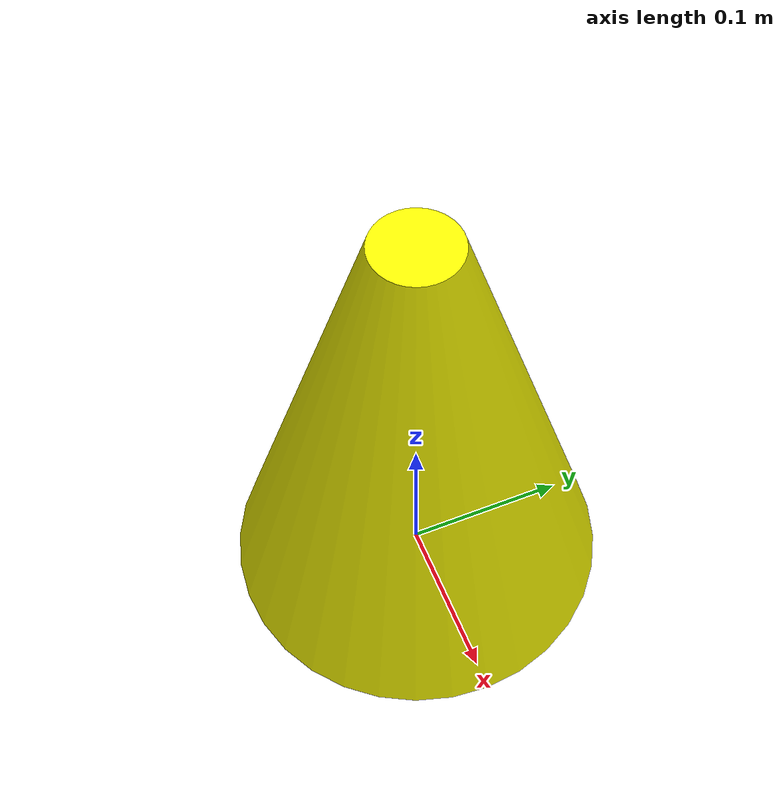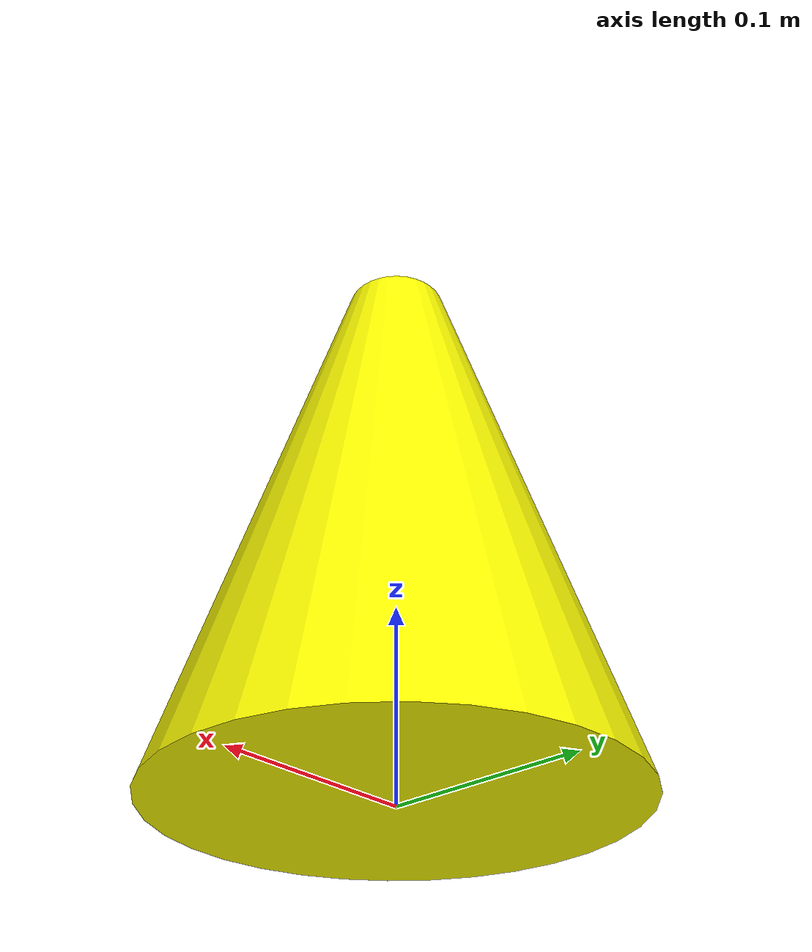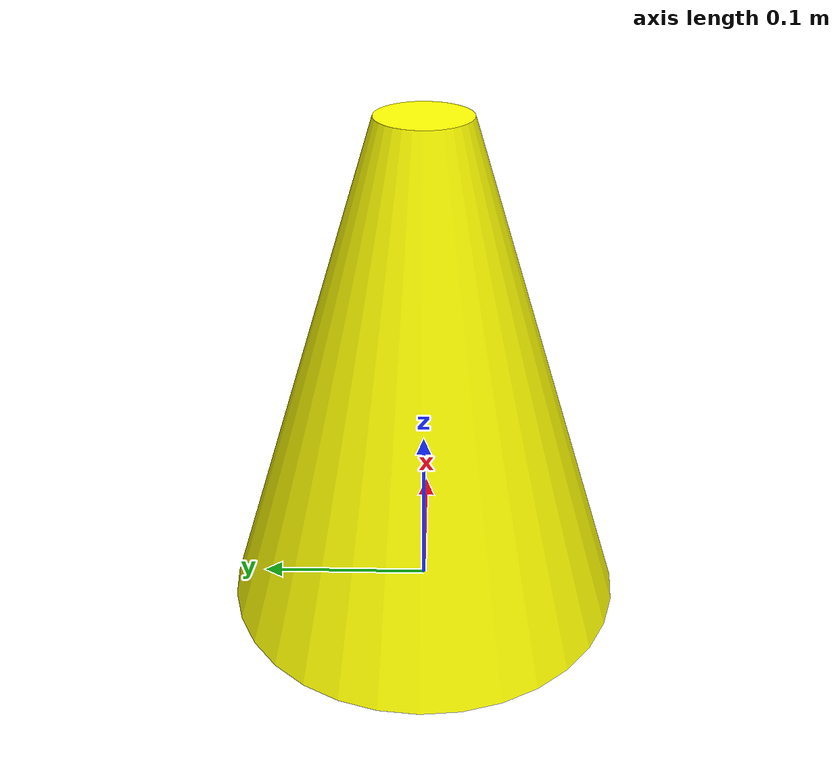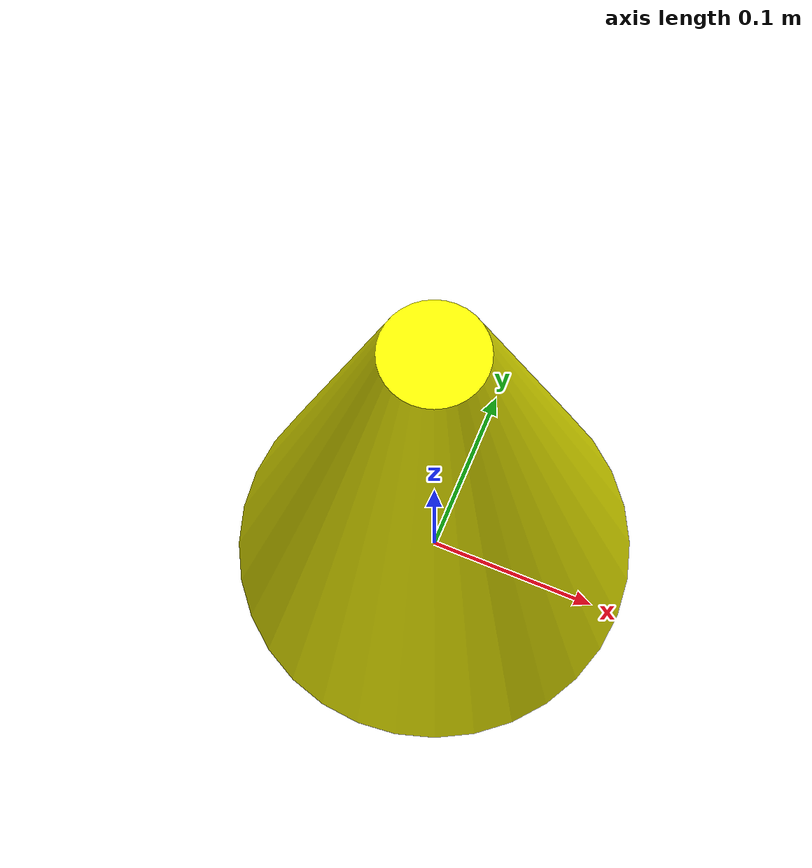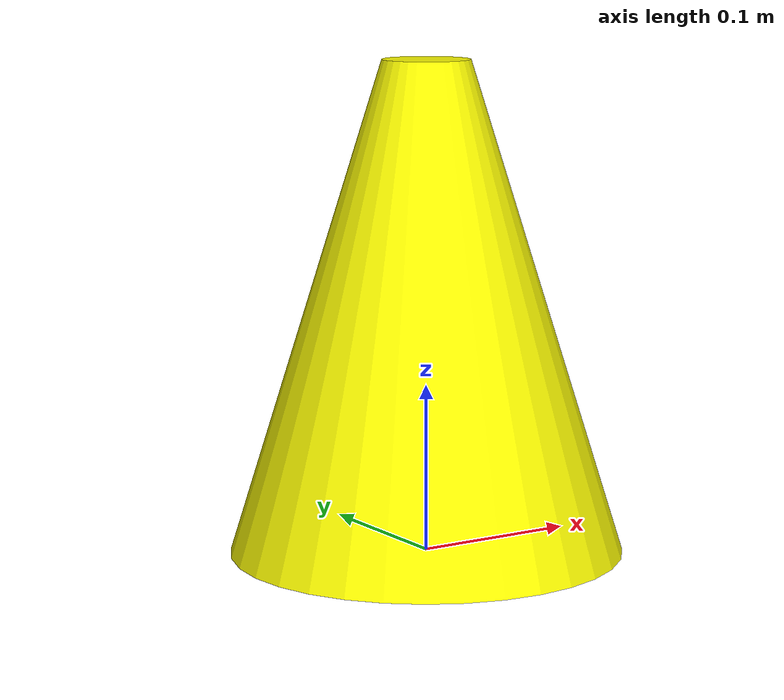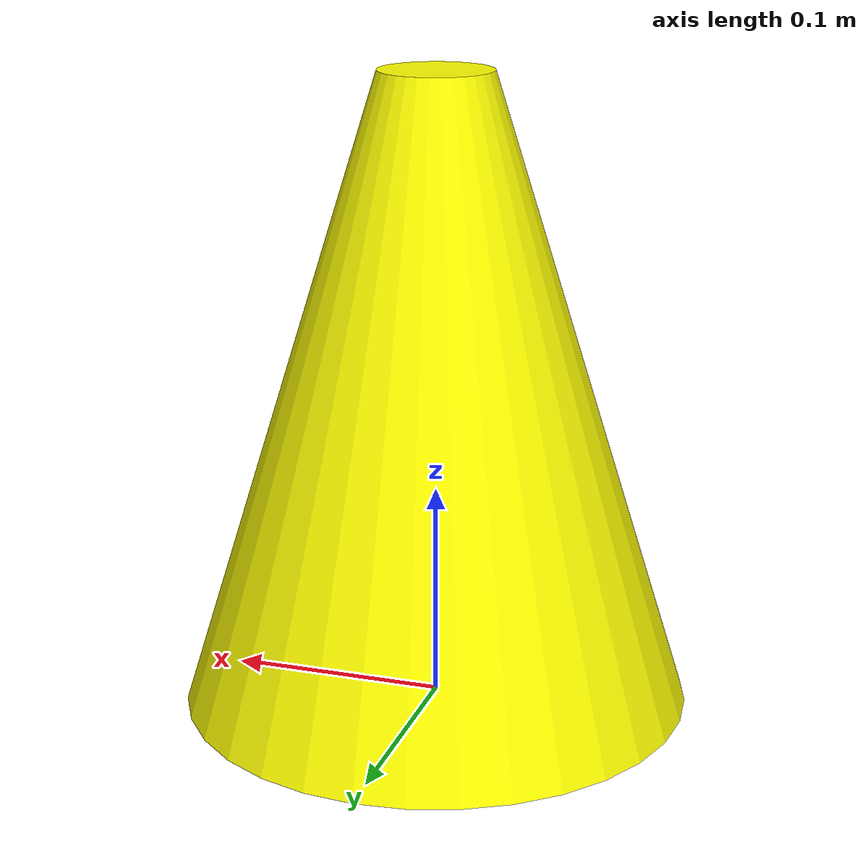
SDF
<?xml version="1.0" ?>
<sdf version="1.6">
  <model name="yellow_cone">
    <static>true</static>

    <link name="cone_link">

      <visual name="visual">
        <geometry>
          <mesh>
            <uri>model://yellow_cone/meshes/cone_mesh.dae</uri>
            <scale>0.65 0.65 0.65</scale>
          </mesh>
        </geometry>
        <material>
          <ambient>1 1 0 1</ambient>
          <diffuse>1 1 0 1</diffuse>
          <specular>0.1 0.1 0.1 1</specular>
        </material>
      </visual>

      <collision name="collision">
        <geometry>
          <mesh>
            <uri>model://yellow_cone/meshes/cone_mesh.dae</uri>
            <scale>0.65 0.65 0.65</scale>
          </mesh>
        </geometry>
      </collision>

    </link>
  </model>
</sdf>
